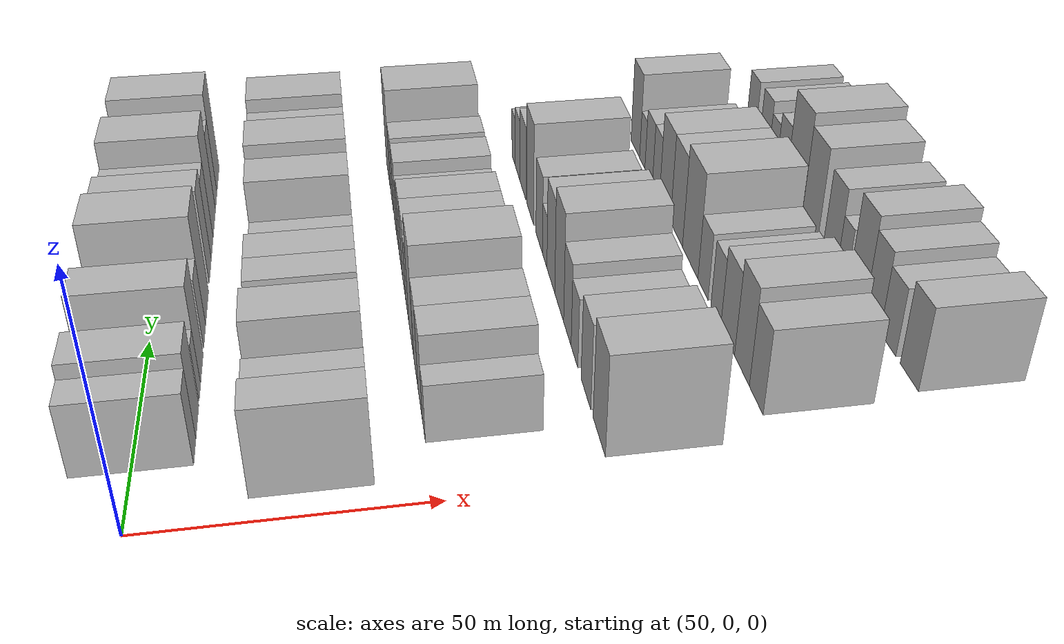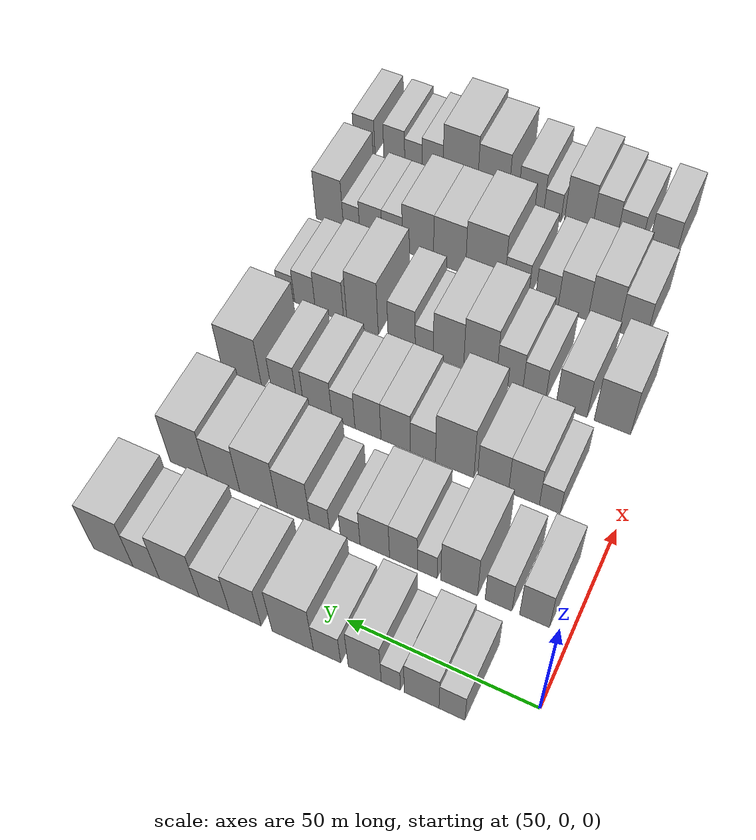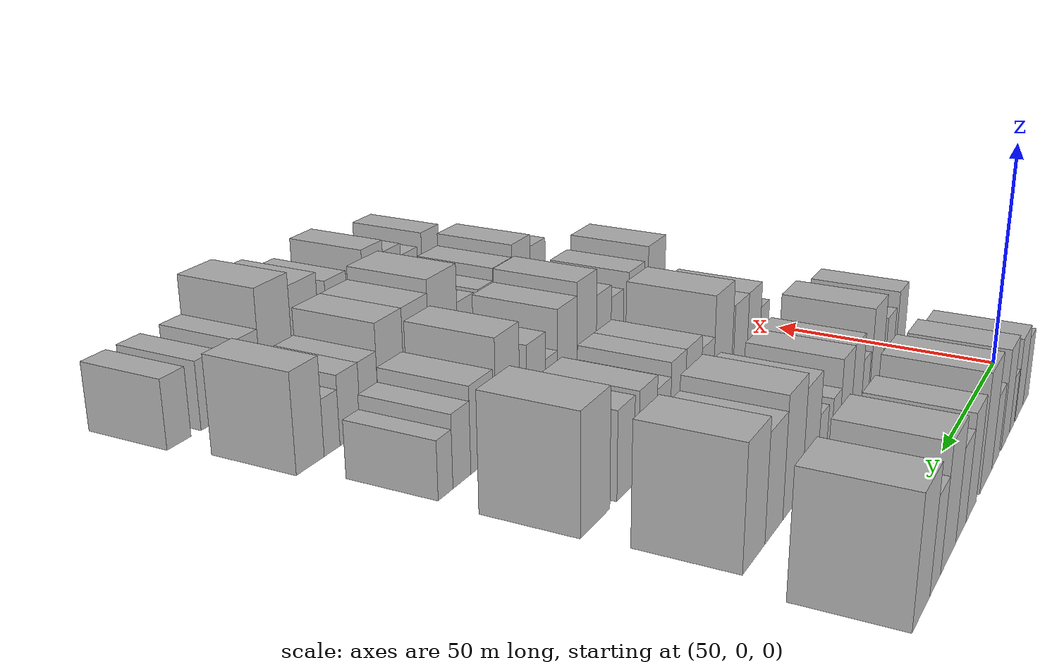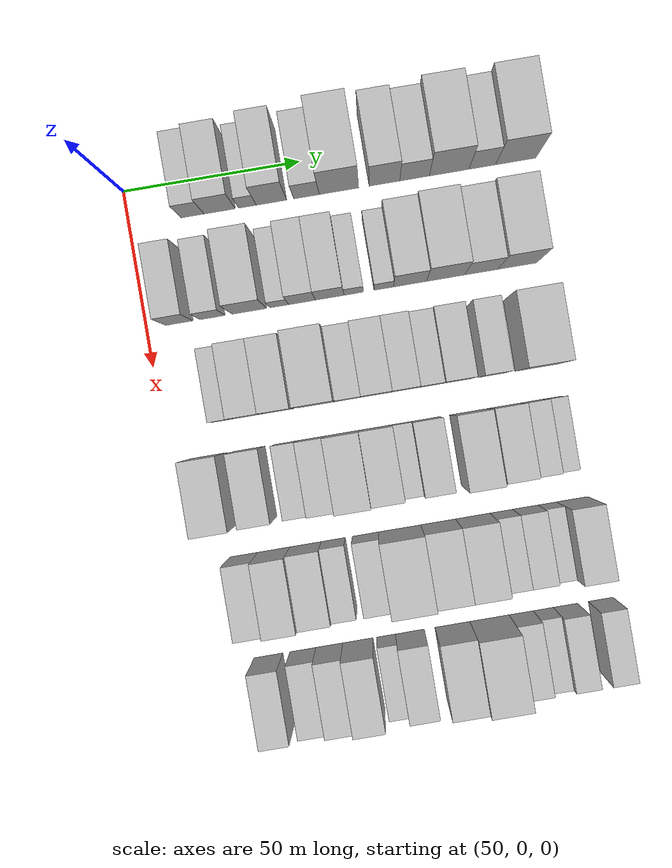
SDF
<sdf version="1.6">
 <world name="default">
  <model name="building_60">
   <static>1</static>
   <pose>50.0000 17.8891 0 0.000000 0.000000 0.000000</pose>
   <link name="link">
    <pose>0 0 7.50 0 0 0</pose>
    <collision name="collision"><geometry><box><size>20.0000 6.5629 15.0000</size></box></geometry></collision>
    <visual name="visual">
     <cast_shadows>0</cast_shadows>
     <geometry><box><size>20.0000 6.5629 15.0000</size></box></geometry>
     <material>
      <script>
       <uri>model://HANNAS_wall/materials/scripts</uri>
       <uri>model://HANNAS_wall/materials/textures</uri>
       <name>vrc/HANNAS_wall</name>
      </script>
     </material>
    </visual>
   </link>
  </model>
  <model name="building_61">
   <static>1</static>
   <pose>50.0000 25.6056 0 0.000000 0.000000 0.000000</pose>
   <link name="link">
    <pose>0 0 9.00 0 0 0</pose>
    <collision name="collision"><geometry><box><size>20.0000 8.8702 18.0000</size></box></geometry></collision>
    <visual name="visual">
     <cast_shadows>0</cast_shadows>
     <geometry><box><size>20.0000 8.8702 18.0000</size></box></geometry>
     <material>
      <script>
       <uri>model://HANNAS_wall/materials/scripts</uri>
       <uri>model://HANNAS_wall/materials/textures</uri>
       <name>vrc/HANNAS_wall</name>
      </script>
     </material>
    </visual>
   </link>
  </model>
  <model name="building_62">
   <static>1</static>
   <pose>50.0000 33.5187 0 0.000000 0.000000 0.000000</pose>
   <link name="link">
    <pose>0 0 6.00 0 0 0</pose>
    <collision name="collision"><geometry><box><size>20.0000 4.9560 12.0000</size></box></geometry></collision>
    <visual name="visual">
     <cast_shadows>0</cast_shadows>
     <geometry><box><size>20.0000 4.9560 12.0000</size></box></geometry>
     <material>
      <script>
       <uri>model://HANNAS_wall/materials/scripts</uri>
       <uri>model://HANNAS_wall/materials/textures</uri>
       <name>vrc/HANNAS_wall</name>
      </script>
     </material>
    </visual>
   </link>
  </model>
  <model name="building_63">
   <static>1</static>
   <pose>50.0000 40.3112 0 0.000000 0.000000 0.000000</pose>
   <link name="link">
    <pose>0 0 10.50 0 0 0</pose>
    <collision name="collision"><geometry><box><size>20.0000 8.6291 21.0000</size></box></geometry></collision>
    <visual name="visual">
     <cast_shadows>0</cast_shadows>
     <geometry><box><size>20.0000 8.6291 21.0000</size></box></geometry>
     <material>
      <script>
       <uri>model://HANNAS_wall/materials/scripts</uri>
       <uri>model://HANNAS_wall/materials/textures</uri>
       <name>vrc/HANNAS_wall</name>
      </script>
     </material>
    </visual>
   </link>
  </model>
  <model name="building_64">
   <static>1</static>
   <pose>50.0000 50.2512 0 0.000000 0.000000 0.000000</pose>
   <link name="link">
    <pose>0 0 7.50 0 0 0</pose>
    <collision name="collision"><geometry><box><size>20.0000 7.2509 15.0000</size></box></geometry></collision>
    <visual name="visual">
     <cast_shadows>0</cast_shadows>
     <geometry><box><size>20.0000 7.2509 15.0000</size></box></geometry>
     <material>
      <script>
       <uri>model://HANNAS_wall/materials/scripts</uri>
       <uri>model://HANNAS_wall/materials/textures</uri>
       <name>vrc/HANNAS_wall</name>
      </script>
     </material>
    </visual>
   </link>
  </model>
  <model name="building_65">
   <static>1</static>
   <pose>50.0000 59.4497 0 0.000000 0.000000 0.000000</pose>
   <link name="link">
    <pose>0 0 12.00 0 0 0</pose>
    <collision name="collision"><geometry><box><size>20.0000 11.1460 24.0000</size></box></geometry></collision>
    <visual name="visual">
     <cast_shadows>0</cast_shadows>
     <geometry><box><size>20.0000 11.1460 24.0000</size></box></geometry>
     <material>
      <script>
       <uri>model://HANNAS_wall/materials/scripts</uri>
       <uri>model://HANNAS_wall/materials/textures</uri>
       <name>vrc/HANNAS_wall</name>
      </script>
     </material>
    </visual>
   </link>
  </model>
  <model name="building_66">
   <static>1</static>
   <pose>50.0000 72.3787 0 0.000000 0.000000 0.000000</pose>
   <link name="link">
    <pose>0 0 10.50 0 0 0</pose>
    <collision name="collision"><geometry><box><size>20.0000 8.7119 21.0000</size></box></geometry></collision>
    <visual name="visual">
     <cast_shadows>0</cast_shadows>
     <geometry><box><size>20.0000 8.7119 21.0000</size></box></geometry>
     <material>
      <script>
       <uri>model://HANNAS_wall/materials/scripts</uri>
       <uri>model://HANNAS_wall/materials/textures</uri>
       <name>vrc/HANNAS_wall</name>
      </script>
     </material>
    </visual>
   </link>
  </model>
  <model name="building_67">
   <static>1</static>
   <pose>50.0000 80.9021 0 0.000000 0.000000 0.000000</pose>
   <link name="link">
    <pose>0 0 9.00 0 0 0</pose>
    <collision name="collision"><geometry><box><size>20.0000 8.3349 18.0000</size></box></geometry></collision>
    <visual name="visual">
     <cast_shadows>0</cast_shadows>
     <geometry><box><size>20.0000 8.3349 18.0000</size></box></geometry>
     <material>
      <script>
       <uri>model://HANNAS_wall/materials/scripts</uri>
       <uri>model://HANNAS_wall/materials/textures</uri>
       <name>vrc/HANNAS_wall</name>
      </script>
     </material>
    </visual>
   </link>
  </model>
  <model name="building_68">
   <static>1</static>
   <pose>50.0000 90.6959 0 0.000000 0.000000 0.000000</pose>
   <link name="link">
    <pose>0 0 12.00 0 0 0</pose>
    <collision name="collision"><geometry><box><size>20.0000 11.2526 24.0000</size></box></geometry></collision>
    <visual name="visual">
     <cast_shadows>0</cast_shadows>
     <geometry><box><size>20.0000 11.2526 24.0000</size></box></geometry>
     <material>
      <script>
       <uri>model://HANNAS_wall/materials/scripts</uri>
       <uri>model://HANNAS_wall/materials/textures</uri>
       <name>vrc/HANNAS_wall</name>
      </script>
     </material>
    </visual>
   </link>
  </model>
  <model name="building_69">
   <static>1</static>
   <pose>50.0000 100.0988 0 0.000000 0.000000 0.000000</pose>
   <link name="link">
    <pose>0 0 9.00 0 0 0</pose>
    <collision name="collision"><geometry><box><size>20.0000 7.5531 18.0000</size></box></geometry></collision>
    <visual name="visual">
     <cast_shadows>0</cast_shadows>
     <geometry><box><size>20.0000 7.5531 18.0000</size></box></geometry>
     <material>
      <script>
       <uri>model://HANNAS_wall/materials/scripts</uri>
       <uri>model://HANNAS_wall/materials/textures</uri>
       <name>vrc/HANNAS_wall</name>
      </script>
     </material>
    </visual>
   </link>
  </model>
  <model name="building_70">
   <static>1</static>
   <pose>50.0000 109.6138 0 0.000000 0.000000 0.000000</pose>
   <link name="link">
    <pose>0 0 12.00 0 0 0</pose>
    <collision name="collision"><geometry><box><size>20.0000 11.4770 24.0000</size></box></geometry></collision>
    <visual name="visual">
     <cast_shadows>0</cast_shadows>
     <geometry><box><size>20.0000 11.4770 24.0000</size></box></geometry>
     <material>
      <script>
       <uri>model://HANNAS_wall/materials/scripts</uri>
       <uri>model://HANNAS_wall/materials/textures</uri>
       <name>vrc/HANNAS_wall</name>
      </script>
     </material>
    </visual>
   </link>
  </model>
  <model name="building_170">
   <static>1</static>
   <pose>79.0000 9.2977 0 0.000000 0.000000 0.000000</pose>
   <link name="link">
    <pose>0 0 9.00 0 0 0</pose>
    <collision name="collision"><geometry><box><size>20.0000 7.7469 18.0000</size></box></geometry></collision>
    <visual name="visual">
     <cast_shadows>0</cast_shadows>
     <geometry><box><size>20.0000 7.7469 18.0000</size></box></geometry>
     <material>
      <script>
       <uri>model://HANNAS_wall/materials/scripts</uri>
       <uri>model://HANNAS_wall/materials/textures</uri>
       <name>vrc/HANNAS_wall</name>
      </script>
     </material>
    </visual>
   </link>
  </model>
  <model name="building_171">
   <static>1</static>
   <pose>79.0000 18.7049 0 0.000000 0.000000 0.000000</pose>
   <link name="link">
    <pose>0 0 7.50 0 0 0</pose>
    <collision name="collision"><geometry><box><size>20.0000 7.0675 15.0000</size></box></geometry></collision>
    <visual name="visual">
     <cast_shadows>0</cast_shadows>
     <geometry><box><size>20.0000 7.0675 15.0000</size></box></geometry>
     <material>
      <script>
       <uri>model://HANNAS_wall/materials/scripts</uri>
       <uri>model://HANNAS_wall/materials/textures</uri>
       <name>vrc/HANNAS_wall</name>
      </script>
     </material>
    </visual>
   </link>
  </model>
  <model name="building_172">
   <static>1</static>
   <pose>79.0000 29.1415 0 0.000000 0.000000 0.000000</pose>
   <link name="link">
    <pose>0 0 10.50 0 0 0</pose>
    <collision name="collision"><geometry><box><size>20.0000 9.8056 21.0000</size></box></geometry></collision>
    <visual name="visual">
     <cast_shadows>0</cast_shadows>
     <geometry><box><size>20.0000 9.8056 21.0000</size></box></geometry>
     <material>
      <script>
       <uri>model://HANNAS_wall/materials/scripts</uri>
       <uri>model://HANNAS_wall/materials/textures</uri>
       <name>vrc/HANNAS_wall</name>
      </script>
     </material>
    </visual>
   </link>
  </model>
  <model name="building_173">
   <static>1</static>
   <pose>79.0000 37.7145 0 0.000000 0.000000 0.000000</pose>
   <link name="link">
    <pose>0 0 6.00 0 0 0</pose>
    <collision name="collision"><geometry><box><size>20.0000 5.3405 12.0000</size></box></geometry></collision>
    <visual name="visual">
     <cast_shadows>0</cast_shadows>
     <geometry><box><size>20.0000 5.3405 12.0000</size></box></geometry>
     <material>
      <script>
       <uri>model://HANNAS_wall/materials/scripts</uri>
       <uri>model://HANNAS_wall/materials/textures</uri>
       <name>vrc/HANNAS_wall</name>
      </script>
     </material>
    </visual>
   </link>
  </model>
  <model name="building_174">
   <static>1</static>
   <pose>79.0000 44.1637 0 0.000000 0.000000 0.000000</pose>
   <link name="link">
    <pose>0 0 9.00 0 0 0</pose>
    <collision name="collision"><geometry><box><size>20.0000 7.5579 18.0000</size></box></geometry></collision>
    <visual name="visual">
     <cast_shadows>0</cast_shadows>
     <geometry><box><size>20.0000 7.5579 18.0000</size></box></geometry>
     <material>
      <script>
       <uri>model://HANNAS_wall/materials/scripts</uri>
       <uri>model://HANNAS_wall/materials/textures</uri>
       <name>vrc/HANNAS_wall</name>
      </script>
     </material>
    </visual>
   </link>
  </model>
  <model name="building_175">
   <static>1</static>
   <pose>79.0000 52.0012 0 0.000000 0.000000 0.000000</pose>
   <link name="link">
    <pose>0 0 9.00 0 0 0</pose>
    <collision name="collision"><geometry><box><size>20.0000 8.1171 18.0000</size></box></geometry></collision>
    <visual name="visual">
     <cast_shadows>0</cast_shadows>
     <geometry><box><size>20.0000 8.1171 18.0000</size></box></geometry>
     <material>
      <script>
       <uri>model://HANNAS_wall/materials/scripts</uri>
       <uri>model://HANNAS_wall/materials/textures</uri>
       <name>vrc/HANNAS_wall</name>
      </script>
     </material>
    </visual>
   </link>
  </model>
  <model name="building_176">
   <static>1</static>
   <pose>79.0000 58.7872 0 0.000000 0.000000 0.000000</pose>
   <link name="link">
    <pose>0 0 6.00 0 0 0</pose>
    <collision name="collision"><geometry><box><size>20.0000 5.4549 12.0000</size></box></geometry></collision>
    <visual name="visual">
     <cast_shadows>0</cast_shadows>
     <geometry><box><size>20.0000 5.4549 12.0000</size></box></geometry>
     <material>
      <script>
       <uri>model://HANNAS_wall/materials/scripts</uri>
       <uri>model://HANNAS_wall/materials/textures</uri>
       <name>vrc/HANNAS_wall</name>
      </script>
     </material>
    </visual>
   </link>
  </model>
  <model name="building_177">
   <static>1</static>
   <pose>79.0000 67.2705 0 0.000000 0.000000 0.000000</pose>
   <link name="link">
    <pose>0 0 6.00 0 0 0</pose>
    <collision name="collision"><geometry><box><size>20.0000 5.5117 12.0000</size></box></geometry></collision>
    <visual name="visual">
     <cast_shadows>0</cast_shadows>
     <geometry><box><size>20.0000 5.5117 12.0000</size></box></geometry>
     <material>
      <script>
       <uri>model://HANNAS_wall/materials/scripts</uri>
       <uri>model://HANNAS_wall/materials/textures</uri>
       <name>vrc/HANNAS_wall</name>
      </script>
     </material>
    </visual>
   </link>
  </model>
  <model name="building_178">
   <static>1</static>
   <pose>79.0000 74.6813 0 0.000000 0.000000 0.000000</pose>
   <link name="link">
    <pose>0 0 10.50 0 0 0</pose>
    <collision name="collision"><geometry><box><size>20.0000 9.3098 21.0000</size></box></geometry></collision>
    <visual name="visual">
     <cast_shadows>0</cast_shadows>
     <geometry><box><size>20.0000 9.3098 21.0000</size></box></geometry>
     <material>
      <script>
       <uri>model://HANNAS_wall/materials/scripts</uri>
       <uri>model://HANNAS_wall/materials/textures</uri>
       <name>vrc/HANNAS_wall</name>
      </script>
     </material>
    </visual>
   </link>
  </model>
  <model name="building_179">
   <static>1</static>
   <pose>79.0000 84.7605 0 0.000000 0.000000 0.000000</pose>
   <link name="link">
    <pose>0 0 12.00 0 0 0</pose>
    <collision name="collision"><geometry><box><size>20.0000 10.8487 24.0000</size></box></geometry></collision>
    <visual name="visual">
     <cast_shadows>0</cast_shadows>
     <geometry><box><size>20.0000 10.8487 24.0000</size></box></geometry>
     <material>
      <script>
       <uri>model://HANNAS_wall/materials/scripts</uri>
       <uri>model://HANNAS_wall/materials/textures</uri>
       <name>vrc/HANNAS_wall</name>
      </script>
     </material>
    </visual>
   </link>
  </model>
  <model name="building_180">
   <static>1</static>
   <pose>79.0000 94.9074 0 0.000000 0.000000 0.000000</pose>
   <link name="link">
    <pose>0 0 10.50 0 0 0</pose>
    <collision name="collision"><geometry><box><size>20.0000 9.4451 21.0000</size></box></geometry></collision>
    <visual name="visual">
     <cast_shadows>0</cast_shadows>
     <geometry><box><size>20.0000 9.4451 21.0000</size></box></geometry>
     <material>
      <script>
       <uri>model://HANNAS_wall/materials/scripts</uri>
       <uri>model://HANNAS_wall/materials/textures</uri>
       <name>vrc/HANNAS_wall</name>
      </script>
     </material>
    </visual>
   </link>
  </model>
  <model name="building_181">
   <static>1</static>
   <pose>79.0000 105.1843 0 0.000000 0.000000 0.000000</pose>
   <link name="link">
    <pose>0 0 12.00 0 0 0</pose>
    <collision name="collision"><geometry><box><size>20.0000 11.1088 24.0000</size></box></geometry></collision>
    <visual name="visual">
     <cast_shadows>0</cast_shadows>
     <geometry><box><size>20.0000 11.1088 24.0000</size></box></geometry>
     <material>
      <script>
       <uri>model://HANNAS_wall/materials/scripts</uri>
       <uri>model://HANNAS_wall/materials/textures</uri>
       <name>vrc/HANNAS_wall</name>
      </script>
     </material>
    </visual>
   </link>
  </model>
  <model name="building_290">
   <static>1</static>
   <pose>108.0000 17.1210 0 0.000000 0.000000 0.000000</pose>
   <link name="link">
    <pose>0 0 6.00 0 0 0</pose>
    <collision name="collision"><geometry><box><size>20.0000 5.6827 12.0000</size></box></geometry></collision>
    <visual name="visual">
     <cast_shadows>0</cast_shadows>
     <geometry><box><size>20.0000 5.6827 12.0000</size></box></geometry>
     <material>
      <script>
       <uri>model://HANNAS_wall/materials/scripts</uri>
       <uri>model://HANNAS_wall/materials/textures</uri>
       <name>vrc/HANNAS_wall</name>
      </script>
     </material>
    </visual>
   </link>
  </model>
  <model name="building_291">
   <static>1</static>
   <pose>108.0000 24.2059 0 0.000000 0.000000 0.000000</pose>
   <link name="link">
    <pose>0 0 9.00 0 0 0</pose>
    <collision name="collision"><geometry><box><size>20.0000 8.4871 18.0000</size></box></geometry></collision>
    <visual name="visual">
     <cast_shadows>0</cast_shadows>
     <geometry><box><size>20.0000 8.4871 18.0000</size></box></geometry>
     <material>
      <script>
       <uri>model://HANNAS_wall/materials/scripts</uri>
       <uri>model://HANNAS_wall/materials/textures</uri>
       <name>vrc/HANNAS_wall</name>
      </script>
     </material>
    </visual>
   </link>
  </model>
  <model name="building_292">
   <static>1</static>
   <pose>108.0000 32.7574 0 0.000000 0.000000 0.000000</pose>
   <link name="link">
    <pose>0 0 9.00 0 0 0</pose>
    <collision name="collision"><geometry><box><size>20.0000 8.6159 18.0000</size></box></geometry></collision>
    <visual name="visual">
     <cast_shadows>0</cast_shadows>
     <geometry><box><size>20.0000 8.6159 18.0000</size></box></geometry>
     <material>
      <script>
       <uri>model://HANNAS_wall/materials/scripts</uri>
       <uri>model://HANNAS_wall/materials/textures</uri>
       <name>vrc/HANNAS_wall</name>
      </script>
     </material>
    </visual>
   </link>
  </model>
  <model name="building_293">
   <static>1</static>
   <pose>108.0000 43.4688 0 0.000000 0.000000 0.000000</pose>
   <link name="link">
    <pose>0 0 12.00 0 0 0</pose>
    <collision name="collision"><geometry><box><size>20.0000 10.8070 24.0000</size></box></geometry></collision>
    <visual name="visual">
     <cast_shadows>0</cast_shadows>
     <geometry><box><size>20.0000 10.8070 24.0000</size></box></geometry>
     <material>
      <script>
       <uri>model://HANNAS_wall/materials/scripts</uri>
       <uri>model://HANNAS_wall/materials/textures</uri>
       <name>vrc/HANNAS_wall</name>
      </script>
     </material>
    </visual>
   </link>
  </model>
  <model name="building_294">
   <static>1</static>
   <pose>108.0000 52.4509 0 0.000000 0.000000 0.000000</pose>
   <link name="link">
    <pose>0 0 7.50 0 0 0</pose>
    <collision name="collision"><geometry><box><size>20.0000 7.1570 15.0000</size></box></geometry></collision>
    <visual name="visual">
     <cast_shadows>0</cast_shadows>
     <geometry><box><size>20.0000 7.1570 15.0000</size></box></geometry>
     <material>
      <script>
       <uri>model://HANNAS_wall/materials/scripts</uri>
       <uri>model://HANNAS_wall/materials/textures</uri>
       <name>vrc/HANNAS_wall</name>
      </script>
     </material>
    </visual>
   </link>
  </model>
  <model name="building_295">
   <static>1</static>
   <pose>108.0000 60.2613 0 0.000000 0.000000 0.000000</pose>
   <link name="link">
    <pose>0 0 9.00 0 0 0</pose>
    <collision name="collision"><geometry><box><size>20.0000 8.4639 18.0000</size></box></geometry></collision>
    <visual name="visual">
     <cast_shadows>0</cast_shadows>
     <geometry><box><size>20.0000 8.4639 18.0000</size></box></geometry>
     <material>
      <script>
       <uri>model://HANNAS_wall/materials/scripts</uri>
       <uri>model://HANNAS_wall/materials/textures</uri>
       <name>vrc/HANNAS_wall</name>
      </script>
     </material>
    </visual>
   </link>
  </model>
  <model name="building_296">
   <static>1</static>
   <pose>108.0000 68.2900 0 0.000000 0.000000 0.000000</pose>
   <link name="link">
    <pose>0 0 9.00 0 0 0</pose>
    <collision name="collision"><geometry><box><size>20.0000 7.5933 18.0000</size></box></geometry></collision>
    <visual name="visual">
     <cast_shadows>0</cast_shadows>
     <geometry><box><size>20.0000 7.5933 18.0000</size></box></geometry>
     <material>
      <script>
       <uri>model://HANNAS_wall/materials/scripts</uri>
       <uri>model://HANNAS_wall/materials/textures</uri>
       <name>vrc/HANNAS_wall</name>
      </script>
     </material>
    </visual>
   </link>
  </model>
  <model name="building_297">
   <static>1</static>
   <pose>108.0000 75.4480 0 0.000000 0.000000 0.000000</pose>
   <link name="link">
    <pose>0 0 7.50 0 0 0</pose>
    <collision name="collision"><geometry><box><size>20.0000 6.7228 15.0000</size></box></geometry></collision>
    <visual name="visual">
     <cast_shadows>0</cast_shadows>
     <geometry><box><size>20.0000 6.7228 15.0000</size></box></geometry>
     <material>
      <script>
       <uri>model://HANNAS_wall/materials/scripts</uri>
       <uri>model://HANNAS_wall/materials/textures</uri>
       <name>vrc/HANNAS_wall</name>
      </script>
     </material>
    </visual>
   </link>
  </model>
  <model name="building_298">
   <static>1</static>
   <pose>108.0000 83.0011 0 0.000000 0.000000 0.000000</pose>
   <link name="link">
    <pose>0 0 9.00 0 0 0</pose>
    <collision name="collision"><geometry><box><size>20.0000 8.3834 18.0000</size></box></geometry></collision>
    <visual name="visual">
     <cast_shadows>0</cast_shadows>
     <geometry><box><size>20.0000 8.3834 18.0000</size></box></geometry>
     <material>
      <script>
       <uri>model://HANNAS_wall/materials/scripts</uri>
       <uri>model://HANNAS_wall/materials/textures</uri>
       <name>vrc/HANNAS_wall</name>
      </script>
     </material>
    </visual>
   </link>
  </model>
  <model name="building_299">
   <static>1</static>
   <pose>108.0000 92.9595 0 0.000000 0.000000 0.000000</pose>
   <link name="link">
    <pose>0 0 9.00 0 0 0</pose>
    <collision name="collision"><geometry><box><size>20.0000 7.5333 18.0000</size></box></geometry></collision>
    <visual name="visual">
     <cast_shadows>0</cast_shadows>
     <geometry><box><size>20.0000 7.5333 18.0000</size></box></geometry>
     <material>
      <script>
       <uri>model://HANNAS_wall/materials/scripts</uri>
       <uri>model://HANNAS_wall/materials/textures</uri>
       <name>vrc/HANNAS_wall</name>
      </script>
     </material>
    </visual>
   </link>
  </model>
  <model name="building_300">
   <static>1</static>
   <pose>108.0000 105.7232 0 0.000000 0.000000 0.000000</pose>
   <link name="link">
    <pose>0 0 12.00 0 0 0</pose>
    <collision name="collision"><geometry><box><size>20.0000 11.9941 24.0000</size></box></geometry></collision>
    <visual name="visual">
     <cast_shadows>0</cast_shadows>
     <geometry><box><size>20.0000 11.9941 24.0000</size></box></geometry>
     <material>
      <script>
       <uri>model://HANNAS_wall/materials/scripts</uri>
       <uri>model://HANNAS_wall/materials/textures</uri>
       <name>vrc/HANNAS_wall</name>
      </script>
     </material>
    </visual>
   </link>
  </model>
  <model name="building_404">
   <static>1</static>
   <pose>137.0000 11.2338 0 0.000000 0.000000 0.000000</pose>
   <link name="link">
    <pose>0 0 10.50 0 0 0</pose>
    <collision name="collision"><geometry><box><size>20.0000 10.1808 21.0000</size></box></geometry></collision>
    <visual name="visual">
     <cast_shadows>0</cast_shadows>
     <geometry><box><size>20.0000 10.1808 21.0000</size></box></geometry>
     <material>
      <script>
       <uri>model://HANNAS_wall/materials/scripts</uri>
       <uri>model://HANNAS_wall/materials/textures</uri>
       <name>vrc/HANNAS_wall</name>
      </script>
     </material>
    </visual>
   </link>
  </model>
  <model name="building_405">
   <static>1</static>
   <pose>137.0000 22.7324 0 0.000000 0.000000 0.000000</pose>
   <link name="link">
    <pose>0 0 9.00 0 0 0</pose>
    <collision name="collision"><geometry><box><size>20.0000 8.8163 18.0000</size></box></geometry></collision>
    <visual name="visual">
     <cast_shadows>0</cast_shadows>
     <geometry><box><size>20.0000 8.8163 18.0000</size></box></geometry>
     <material>
      <script>
       <uri>model://HANNAS_wall/materials/scripts</uri>
       <uri>model://HANNAS_wall/materials/textures</uri>
       <name>vrc/HANNAS_wall</name>
      </script>
     </material>
    </visual>
   </link>
  </model>
  <model name="building_406">
   <static>1</static>
   <pose>137.0000 33.4234 0 0.000000 0.000000 0.000000</pose>
   <link name="link">
    <pose>0 0 7.50 0 0 0</pose>
    <collision name="collision"><geometry><box><size>20.0000 6.5657 15.0000</size></box></geometry></collision>
    <visual name="visual">
     <cast_shadows>0</cast_shadows>
     <geometry><box><size>20.0000 6.5657 15.0000</size></box></geometry>
     <material>
      <script>
       <uri>model://HANNAS_wall/materials/scripts</uri>
       <uri>model://HANNAS_wall/materials/textures</uri>
       <name>vrc/HANNAS_wall</name>
      </script>
     </material>
    </visual>
   </link>
  </model>
  <model name="building_407">
   <static>1</static>
   <pose>137.0000 40.5179 0 0.000000 0.000000 0.000000</pose>
   <link name="link">
    <pose>0 0 9.00 0 0 0</pose>
    <collision name="collision"><geometry><box><size>20.0000 7.6233 18.0000</size></box></geometry></collision>
    <visual name="visual">
     <cast_shadows>0</cast_shadows>
     <geometry><box><size>20.0000 7.6233 18.0000</size></box></geometry>
     <material>
      <script>
       <uri>model://HANNAS_wall/materials/scripts</uri>
       <uri>model://HANNAS_wall/materials/textures</uri>
       <name>vrc/HANNAS_wall</name>
      </script>
     </material>
    </visual>
   </link>
  </model>
  <model name="building_408">
   <static>1</static>
   <pose>137.0000 49.1403 0 0.000000 0.000000 0.000000</pose>
   <link name="link">
    <pose>0 0 12.00 0 0 0</pose>
    <collision name="collision"><geometry><box><size>20.0000 9.6216 24.0000</size></box></geometry></collision>
    <visual name="visual">
     <cast_shadows>0</cast_shadows>
     <geometry><box><size>20.0000 9.6216 24.0000</size></box></geometry>
     <material>
      <script>
       <uri>model://HANNAS_wall/materials/scripts</uri>
       <uri>model://HANNAS_wall/materials/textures</uri>
       <name>vrc/HANNAS_wall</name>
      </script>
     </material>
    </visual>
   </link>
  </model>
  <model name="building_409">
   <static>1</static>
   <pose>137.0000 58.4550 0 0.000000 0.000000 0.000000</pose>
   <link name="link">
    <pose>0 0 10.50 0 0 0</pose>
    <collision name="collision"><geometry><box><size>20.0000 9.0077 21.0000</size></box></geometry></collision>
    <visual name="visual">
     <cast_shadows>0</cast_shadows>
     <geometry><box><size>20.0000 9.0077 21.0000</size></box></geometry>
     <material>
      <script>
       <uri>model://HANNAS_wall/materials/scripts</uri>
       <uri>model://HANNAS_wall/materials/textures</uri>
       <name>vrc/HANNAS_wall</name>
      </script>
     </material>
    </visual>
   </link>
  </model>
  <model name="building_410">
   <static>1</static>
   <pose>137.0000 65.6561 0 0.000000 0.000000 0.000000</pose>
   <link name="link">
    <pose>0 0 6.00 0 0 0</pose>
    <collision name="collision"><geometry><box><size>20.0000 5.3944 12.0000</size></box></geometry></collision>
    <visual name="visual">
     <cast_shadows>0</cast_shadows>
     <geometry><box><size>20.0000 5.3944 12.0000</size></box></geometry>
     <material>
      <script>
       <uri>model://HANNAS_wall/materials/scripts</uri>
       <uri>model://HANNAS_wall/materials/textures</uri>
       <name>vrc/HANNAS_wall</name>
      </script>
     </material>
    </visual>
   </link>
  </model>
  <model name="building_411">
   <static>1</static>
   <pose>137.0000 72.4473 0 0.000000 0.000000 0.000000</pose>
   <link name="link">
    <pose>0 0 9.00 0 0 0</pose>
    <collision name="collision"><geometry><box><size>20.0000 8.1880 18.0000</size></box></geometry></collision>
    <visual name="visual">
     <cast_shadows>0</cast_shadows>
     <geometry><box><size>20.0000 8.1880 18.0000</size></box></geometry>
     <material>
      <script>
       <uri>model://HANNAS_wall/materials/scripts</uri>
       <uri>model://HANNAS_wall/materials/textures</uri>
       <name>vrc/HANNAS_wall</name>
      </script>
     </material>
    </visual>
   </link>
  </model>
  <model name="building_412">
   <static>1</static>
   <pose>137.0000 84.3416 0 0.000000 0.000000 0.000000</pose>
   <link name="link">
    <pose>0 0 12.00 0 0 0</pose>
    <collision name="collision"><geometry><box><size>20.0000 9.6006 24.0000</size></box></geometry></collision>
    <visual name="visual">
     <cast_shadows>0</cast_shadows>
     <geometry><box><size>20.0000 9.6006 24.0000</size></box></geometry>
     <material>
      <script>
       <uri>model://HANNAS_wall/materials/scripts</uri>
       <uri>model://HANNAS_wall/materials/textures</uri>
       <name>vrc/HANNAS_wall</name>
      </script>
     </material>
    </visual>
   </link>
  </model>
  <model name="building_413">
   <static>1</static>
   <pose>137.0000 94.5643 0 0.000000 0.000000 0.000000</pose>
   <link name="link">
    <pose>0 0 9.00 0 0 0</pose>
    <collision name="collision"><geometry><box><size>20.0000 8.8448 18.0000</size></box></geometry></collision>
    <visual name="visual">
     <cast_shadows>0</cast_shadows>
     <geometry><box><size>20.0000 8.8448 18.0000</size></box></geometry>
     <material>
      <script>
       <uri>model://HANNAS_wall/materials/scripts</uri>
       <uri>model://HANNAS_wall/materials/textures</uri>
       <name>vrc/HANNAS_wall</name>
      </script>
     </material>
    </visual>
   </link>
  </model>
  <model name="building_414">
   <static>1</static>
   <pose>137.0000 102.2534 0 0.000000 0.000000 0.000000</pose>
   <link name="link">
    <pose>0 0 7.50 0 0 0</pose>
    <collision name="collision"><geometry><box><size>20.0000 6.5333 15.0000</size></box></geometry></collision>
    <visual name="visual">
     <cast_shadows>0</cast_shadows>
     <geometry><box><size>20.0000 6.5333 15.0000</size></box></geometry>
     <material>
      <script>
       <uri>model://HANNAS_wall/materials/scripts</uri>
       <uri>model://HANNAS_wall/materials/textures</uri>
       <name>vrc/HANNAS_wall</name>
      </script>
     </material>
    </visual>
   </link>
  </model>
  <model name="building_415">
   <static>1</static>
   <pose>137.0000 108.1250 0 0.000000 0.000000 0.000000</pose>
   <link name="link">
    <pose>0 0 6.00 0 0 0</pose>
    <collision name="collision"><geometry><box><size>20.0000 5.2099 12.0000</size></box></geometry></collision>
    <visual name="visual">
     <cast_shadows>0</cast_shadows>
     <geometry><box><size>20.0000 5.2099 12.0000</size></box></geometry>
     <material>
      <script>
       <uri>model://HANNAS_wall/materials/scripts</uri>
       <uri>model://HANNAS_wall/materials/textures</uri>
       <name>vrc/HANNAS_wall</name>
      </script>
     </material>
    </visual>
   </link>
  </model>
  <model name="building_526">
   <static>1</static>
   <pose>166.0000 16.3363 0 0.000000 0.000000 0.000000</pose>
   <link name="link">
    <pose>0 0 9.00 0 0 0</pose>
    <collision name="collision"><geometry><box><size>20.0000 7.9173 18.0000</size></box></geometry></collision>
    <visual name="visual">
     <cast_shadows>0</cast_shadows>
     <geometry><box><size>20.0000 7.9173 18.0000</size></box></geometry>
     <material>
      <script>
       <uri>model://HANNAS_wall/materials/scripts</uri>
       <uri>model://HANNAS_wall/materials/textures</uri>
       <name>vrc/HANNAS_wall</name>
      </script>
     </material>
    </visual>
   </link>
  </model>
  <model name="building_527">
   <static>1</static>
   <pose>166.0000 24.8188 0 0.000000 0.000000 0.000000</pose>
   <link name="link">
    <pose>0 0 10.50 0 0 0</pose>
    <collision name="collision"><geometry><box><size>20.0000 9.0476 21.0000</size></box></geometry></collision>
    <visual name="visual">
     <cast_shadows>0</cast_shadows>
     <geometry><box><size>20.0000 9.0476 21.0000</size></box></geometry>
     <material>
      <script>
       <uri>model://HANNAS_wall/materials/scripts</uri>
       <uri>model://HANNAS_wall/materials/textures</uri>
       <name>vrc/HANNAS_wall</name>
      </script>
     </material>
    </visual>
   </link>
  </model>
  <model name="building_528">
   <static>1</static>
   <pose>166.0000 33.8088 0 0.000000 0.000000 0.000000</pose>
   <link name="link">
    <pose>0 0 9.00 0 0 0</pose>
    <collision name="collision"><geometry><box><size>20.0000 8.9325 18.0000</size></box></geometry></collision>
    <visual name="visual">
     <cast_shadows>0</cast_shadows>
     <geometry><box><size>20.0000 8.9325 18.0000</size></box></geometry>
     <material>
      <script>
       <uri>model://HANNAS_wall/materials/scripts</uri>
       <uri>model://HANNAS_wall/materials/textures</uri>
       <name>vrc/HANNAS_wall</name>
      </script>
     </material>
    </visual>
   </link>
  </model>
  <model name="building_529">
   <static>1</static>
   <pose>166.0000 41.6609 0 0.000000 0.000000 0.000000</pose>
   <link name="link">
    <pose>0 0 7.50 0 0 0</pose>
    <collision name="collision"><geometry><box><size>20.0000 6.7718 15.0000</size></box></geometry></collision>
    <visual name="visual">
     <cast_shadows>0</cast_shadows>
     <geometry><box><size>20.0000 6.7718 15.0000</size></box></geometry>
     <material>
      <script>
       <uri>model://HANNAS_wall/materials/scripts</uri>
       <uri>model://HANNAS_wall/materials/textures</uri>
       <name>vrc/HANNAS_wall</name>
      </script>
     </material>
    </visual>
   </link>
  </model>
  <model name="building_530">
   <static>1</static>
   <pose>166.0000 50.7321 0 0.000000 0.000000 0.000000</pose>
   <link name="link">
    <pose>0 0 7.50 0 0 0</pose>
    <collision name="collision"><geometry><box><size>20.0000 7.3705 15.0000</size></box></geometry></collision>
    <visual name="visual">
     <cast_shadows>0</cast_shadows>
     <geometry><box><size>20.0000 7.3705 15.0000</size></box></geometry>
     <material>
      <script>
       <uri>model://HANNAS_wall/materials/scripts</uri>
       <uri>model://HANNAS_wall/materials/textures</uri>
       <name>vrc/HANNAS_wall</name>
      </script>
     </material>
    </visual>
   </link>
  </model>
  <model name="building_531">
   <static>1</static>
   <pose>166.0000 60.4075 0 0.000000 0.000000 0.000000</pose>
   <link name="link">
    <pose>0 0 12.00 0 0 0</pose>
    <collision name="collision"><geometry><box><size>20.0000 11.9803 24.0000</size></box></geometry></collision>
    <visual name="visual">
     <cast_shadows>0</cast_shadows>
     <geometry><box><size>20.0000 11.9803 24.0000</size></box></geometry>
     <material>
      <script>
       <uri>model://HANNAS_wall/materials/scripts</uri>
       <uri>model://HANNAS_wall/materials/textures</uri>
       <name>vrc/HANNAS_wall</name>
      </script>
     </material>
    </visual>
   </link>
  </model>
  <model name="building_532">
   <static>1</static>
   <pose>166.0000 71.3663 0 0.000000 0.000000 0.000000</pose>
   <link name="link">
    <pose>0 0 10.50 0 0 0</pose>
    <collision name="collision"><geometry><box><size>20.0000 9.9372 21.0000</size></box></geometry></collision>
    <visual name="visual">
     <cast_shadows>0</cast_shadows>
     <geometry><box><size>20.0000 9.9372 21.0000</size></box></geometry>
     <material>
      <script>
       <uri>model://HANNAS_wall/materials/scripts</uri>
       <uri>model://HANNAS_wall/materials/textures</uri>
       <name>vrc/HANNAS_wall</name>
      </script>
     </material>
    </visual>
   </link>
  </model>
  <model name="building_533">
   <static>1</static>
   <pose>166.0000 81.2060 0 0.000000 0.000000 0.000000</pose>
   <link name="link">
    <pose>0 0 10.50 0 0 0</pose>
    <collision name="collision"><geometry><box><size>20.0000 9.7423 21.0000</size></box></geometry></collision>
    <visual name="visual">
     <cast_shadows>0</cast_shadows>
     <geometry><box><size>20.0000 9.7423 21.0000</size></box></geometry>
     <material>
      <script>
       <uri>model://HANNAS_wall/materials/scripts</uri>
       <uri>model://HANNAS_wall/materials/textures</uri>
       <name>vrc/HANNAS_wall</name>
      </script>
     </material>
    </visual>
   </link>
  </model>
  <model name="building_534">
   <static>1</static>
   <pose>166.0000 89.3068 0 0.000000 0.000000 0.000000</pose>
   <link name="link">
    <pose>0 0 7.50 0 0 0</pose>
    <collision name="collision"><geometry><box><size>20.0000 6.4593 15.0000</size></box></geometry></collision>
    <visual name="visual">
     <cast_shadows>0</cast_shadows>
     <geometry><box><size>20.0000 6.4593 15.0000</size></box></geometry>
     <material>
      <script>
       <uri>model://HANNAS_wall/materials/scripts</uri>
       <uri>model://HANNAS_wall/materials/textures</uri>
       <name>vrc/HANNAS_wall</name>
      </script>
     </material>
    </visual>
   </link>
  </model>
  <model name="building_535">
   <static>1</static>
   <pose>166.0000 96.1412 0 0.000000 0.000000 0.000000</pose>
   <link name="link">
    <pose>0 0 7.50 0 0 0</pose>
    <collision name="collision"><geometry><box><size>20.0000 7.2094 15.0000</size></box></geometry></collision>
    <visual name="visual">
     <cast_shadows>0</cast_shadows>
     <geometry><box><size>20.0000 7.2094 15.0000</size></box></geometry>
     <material>
      <script>
       <uri>model://HANNAS_wall/materials/scripts</uri>
       <uri>model://HANNAS_wall/materials/textures</uri>
       <name>vrc/HANNAS_wall</name>
      </script>
     </material>
    </visual>
   </link>
  </model>
  <model name="building_536">
   <static>1</static>
   <pose>166.0000 102.3748 0 0.000000 0.000000 0.000000</pose>
   <link name="link">
    <pose>0 0 6.00 0 0 0</pose>
    <collision name="collision"><geometry><box><size>20.0000 5.2579 12.0000</size></box></geometry></collision>
    <visual name="visual">
     <cast_shadows>0</cast_shadows>
     <geometry><box><size>20.0000 5.2579 12.0000</size></box></geometry>
     <material>
      <script>
       <uri>model://HANNAS_wall/materials/scripts</uri>
       <uri>model://HANNAS_wall/materials/textures</uri>
       <name>vrc/HANNAS_wall</name>
      </script>
     </material>
    </visual>
   </link>
  </model>
  <model name="building_537">
   <static>1</static>
   <pose>166.0000 109.4448 0 0.000000 0.000000 0.000000</pose>
   <link name="link">
    <pose>0 0 10.50 0 0 0</pose>
    <collision name="collision"><geometry><box><size>20.0000 8.8820 21.0000</size></box></geometry></collision>
    <visual name="visual">
     <cast_shadows>0</cast_shadows>
     <geometry><box><size>20.0000 8.8820 21.0000</size></box></geometry>
     <material>
      <script>
       <uri>model://HANNAS_wall/materials/scripts</uri>
       <uri>model://HANNAS_wall/materials/textures</uri>
       <name>vrc/HANNAS_wall</name>
      </script>
     </material>
    </visual>
   </link>
  </model>
  <model name="building_642">
   <static>1</static>
   <pose>195.0000 18.3389 0 0.000000 0.000000 0.000000</pose>
   <link name="link">
    <pose>0 0 9.00 0 0 0</pose>
    <collision name="collision"><geometry><box><size>20.0000 8.1467 18.0000</size></box></geometry></collision>
    <visual name="visual">
     <cast_shadows>0</cast_shadows>
     <geometry><box><size>20.0000 8.1467 18.0000</size></box></geometry>
     <material>
      <script>
       <uri>model://HANNAS_wall/materials/scripts</uri>
       <uri>model://HANNAS_wall/materials/textures</uri>
       <name>vrc/HANNAS_wall</name>
      </script>
     </material>
    </visual>
   </link>
  </model>
  <model name="building_643">
   <static>1</static>
   <pose>195.0000 28.1096 0 0.000000 0.000000 0.000000</pose>
   <link name="link">
    <pose>0 0 7.50 0 0 0</pose>
    <collision name="collision"><geometry><box><size>20.0000 7.3948 15.0000</size></box></geometry></collision>
    <visual name="visual">
     <cast_shadows>0</cast_shadows>
     <geometry><box><size>20.0000 7.3948 15.0000</size></box></geometry>
     <material>
      <script>
       <uri>model://HANNAS_wall/materials/scripts</uri>
       <uri>model://HANNAS_wall/materials/textures</uri>
       <name>vrc/HANNAS_wall</name>
      </script>
     </material>
    </visual>
   </link>
  </model>
  <model name="building_644">
   <static>1</static>
   <pose>195.0000 35.5907 0 0.000000 0.000000 0.000000</pose>
   <link name="link">
    <pose>0 0 9.00 0 0 0</pose>
    <collision name="collision"><geometry><box><size>20.0000 7.5674 18.0000</size></box></geometry></collision>
    <visual name="visual">
     <cast_shadows>0</cast_shadows>
     <geometry><box><size>20.0000 7.5674 18.0000</size></box></geometry>
     <material>
      <script>
       <uri>model://HANNAS_wall/materials/scripts</uri>
       <uri>model://HANNAS_wall/materials/textures</uri>
       <name>vrc/HANNAS_wall</name>
      </script>
     </material>
    </visual>
   </link>
  </model>
  <model name="building_645">
   <static>1</static>
   <pose>195.0000 43.6841 0 0.000000 0.000000 0.000000</pose>
   <link name="link">
    <pose>0 0 10.50 0 0 0</pose>
    <collision name="collision"><geometry><box><size>20.0000 8.6193 21.0000</size></box></geometry></collision>
    <visual name="visual">
     <cast_shadows>0</cast_shadows>
     <geometry><box><size>20.0000 8.6193 21.0000</size></box></geometry>
     <material>
      <script>
       <uri>model://HANNAS_wall/materials/scripts</uri>
       <uri>model://HANNAS_wall/materials/textures</uri>
       <name>vrc/HANNAS_wall</name>
      </script>
     </material>
    </visual>
   </link>
  </model>
  <model name="building_646">
   <static>1</static>
   <pose>195.0000 51.7146 0 0.000000 0.000000 0.000000</pose>
   <link name="link">
    <pose>0 0 6.00 0 0 0</pose>
    <collision name="collision"><geometry><box><size>20.0000 5.4418 12.0000</size></box></geometry></collision>
    <visual name="visual">
     <cast_shadows>0</cast_shadows>
     <geometry><box><size>20.0000 5.4418 12.0000</size></box></geometry>
     <material>
      <script>
       <uri>model://HANNAS_wall/materials/scripts</uri>
       <uri>model://HANNAS_wall/materials/textures</uri>
       <name>vrc/HANNAS_wall</name>
      </script>
     </material>
    </visual>
   </link>
  </model>
  <model name="building_647">
   <static>1</static>
   <pose>195.0000 58.5020 0 0.000000 0.000000 0.000000</pose>
   <link name="link">
    <pose>0 0 9.00 0 0 0</pose>
    <collision name="collision"><geometry><box><size>20.0000 8.1330 18.0000</size></box></geometry></collision>
    <visual name="visual">
     <cast_shadows>0</cast_shadows>
     <geometry><box><size>20.0000 8.1330 18.0000</size></box></geometry>
     <material>
      <script>
       <uri>model://HANNAS_wall/materials/scripts</uri>
       <uri>model://HANNAS_wall/materials/textures</uri>
       <name>vrc/HANNAS_wall</name>
      </script>
     </material>
    </visual>
   </link>
  </model>
  <model name="building_648">
   <static>1</static>
   <pose>195.0000 70.5242 0 0.000000 0.000000 0.000000</pose>
   <link name="link">
    <pose>0 0 10.50 0 0 0</pose>
    <collision name="collision"><geometry><box><size>20.0000 9.9114 21.0000</size></box></geometry></collision>
    <visual name="visual">
     <cast_shadows>0</cast_shadows>
     <geometry><box><size>20.0000 9.9114 21.0000</size></box></geometry>
     <material>
      <script>
       <uri>model://HANNAS_wall/materials/scripts</uri>
       <uri>model://HANNAS_wall/materials/textures</uri>
       <name>vrc/HANNAS_wall</name>
      </script>
     </material>
    </visual>
   </link>
  </model>
  <model name="building_649">
   <static>1</static>
   <pose>195.0000 81.0811 0 0.000000 0.000000 0.000000</pose>
   <link name="link">
    <pose>0 0 12.00 0 0 0</pose>
    <collision name="collision"><geometry><box><size>20.0000 11.2024 24.0000</size></box></geometry></collision>
    <visual name="visual">
     <cast_shadows>0</cast_shadows>
     <geometry><box><size>20.0000 11.2024 24.0000</size></box></geometry>
     <material>
      <script>
       <uri>model://HANNAS_wall/materials/scripts</uri>
       <uri>model://HANNAS_wall/materials/textures</uri>
       <name>vrc/HANNAS_wall</name>
      </script>
     </material>
    </visual>
   </link>
  </model>
  <model name="building_650">
   <static>1</static>
   <pose>195.0000 90.1167 0 0.000000 0.000000 0.000000</pose>
   <link name="link">
    <pose>0 0 7.50 0 0 0</pose>
    <collision name="collision"><geometry><box><size>20.0000 6.8690 15.0000</size></box></geometry></collision>
    <visual name="visual">
     <cast_shadows>0</cast_shadows>
     <geometry><box><size>20.0000 6.8690 15.0000</size></box></geometry>
     <material>
      <script>
       <uri>model://HANNAS_wall/materials/scripts</uri>
       <uri>model://HANNAS_wall/materials/textures</uri>
       <name>vrc/HANNAS_wall</name>
      </script>
     </material>
    </visual>
   </link>
  </model>
  <model name="building_651">
   <static>1</static>
   <pose>195.0000 96.3917 0 0.000000 0.000000 0.000000</pose>
   <link name="link">
    <pose>0 0 6.00 0 0 0</pose>
    <collision name="collision"><geometry><box><size>20.0000 5.6809 12.0000</size></box></geometry></collision>
    <visual name="visual">
     <cast_shadows>0</cast_shadows>
     <geometry><box><size>20.0000 5.6809 12.0000</size></box></geometry>
     <material>
      <script>
       <uri>model://HANNAS_wall/materials/scripts</uri>
       <uri>model://HANNAS_wall/materials/textures</uri>
       <name>vrc/HANNAS_wall</name>
      </script>
     </material>
    </visual>
   </link>
  </model>
  <model name="building_652">
   <static>1</static>
   <pose>195.0000 102.7052 0 0.000000 0.000000 0.000000</pose>
   <link name="link">
    <pose>0 0 7.50 0 0 0</pose>
    <collision name="collision"><geometry><box><size>20.0000 6.9461 15.0000</size></box></geometry></collision>
    <visual name="visual">
     <cast_shadows>0</cast_shadows>
     <geometry><box><size>20.0000 6.9461 15.0000</size></box></geometry>
     <material>
      <script>
       <uri>model://HANNAS_wall/materials/scripts</uri>
       <uri>model://HANNAS_wall/materials/textures</uri>
       <name>vrc/HANNAS_wall</name>
      </script>
     </material>
    </visual>
   </link>
  </model>
  <model name="building_653">
   <static>1</static>
   <pose>195.0000 112.6896 0 0.000000 0.000000 0.000000</pose>
   <link name="link">
    <pose>0 0 7.50 0 0 0</pose>
    <collision name="collision"><geometry><box><size>20.0000 7.0227 15.0000</size></box></geometry></collision>
    <visual name="visual">
     <cast_shadows>0</cast_shadows>
     <geometry><box><size>20.0000 7.0227 15.0000</size></box></geometry>
     <material>
      <script>
       <uri>model://HANNAS_wall/materials/scripts</uri>
       <uri>model://HANNAS_wall/materials/textures</uri>
       <name>vrc/HANNAS_wall</name>
      </script>
     </material>
    </visual>
   </link>
  </model>
 </world>
</sdf>
